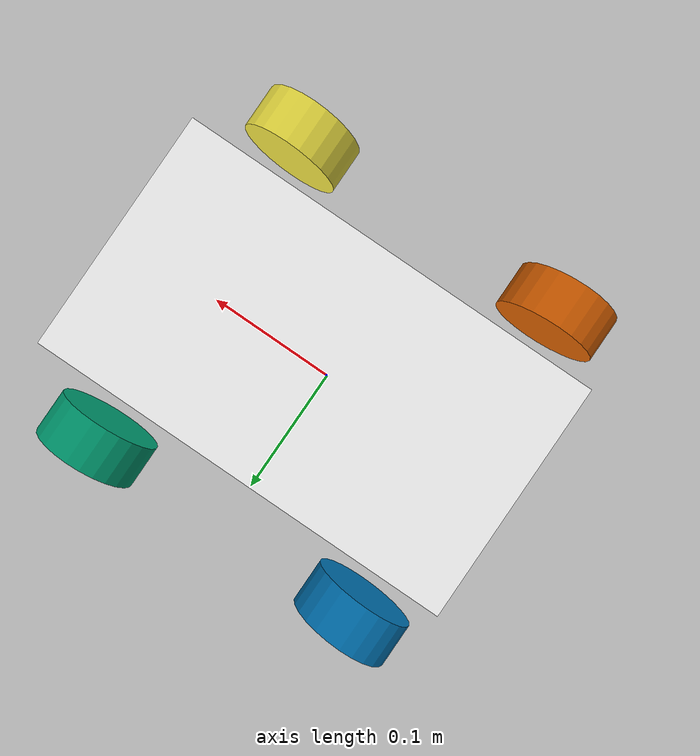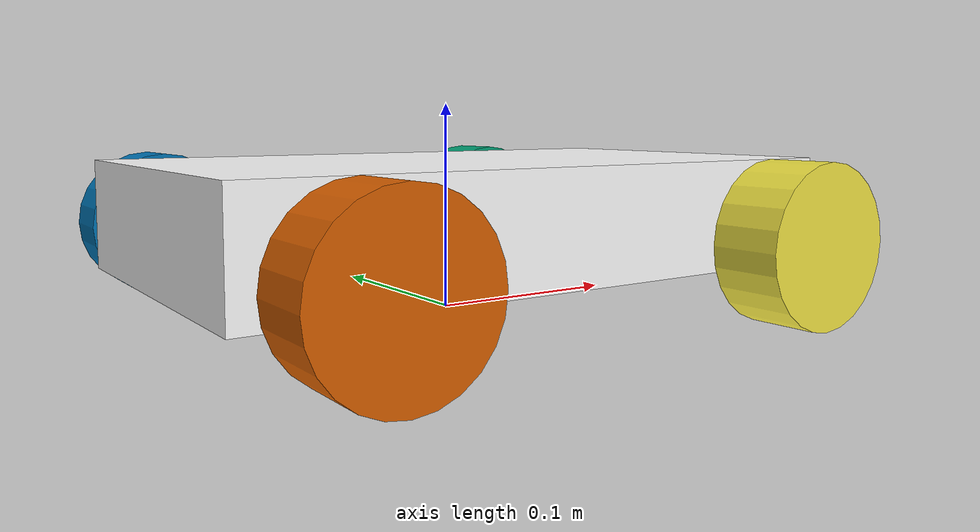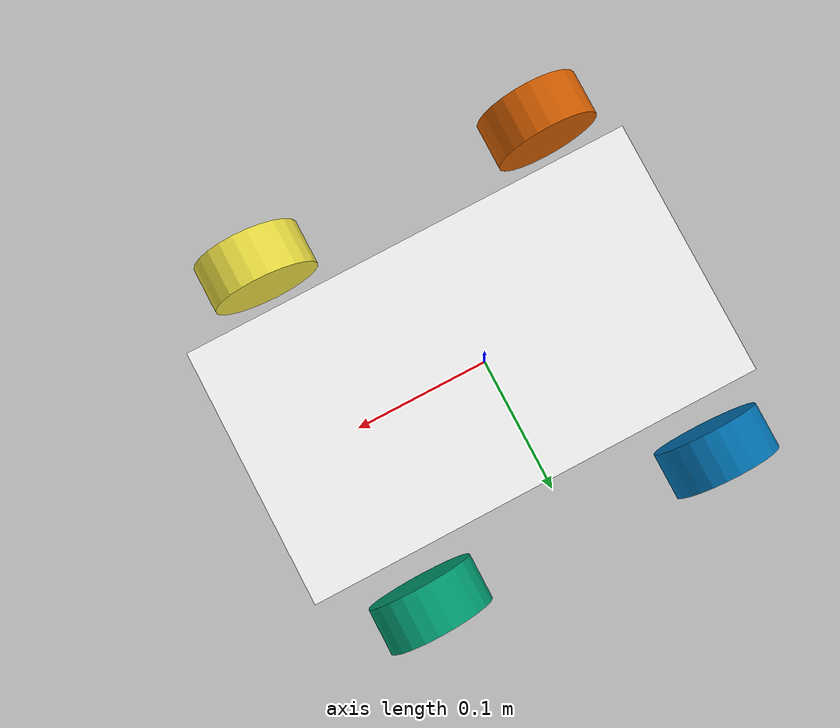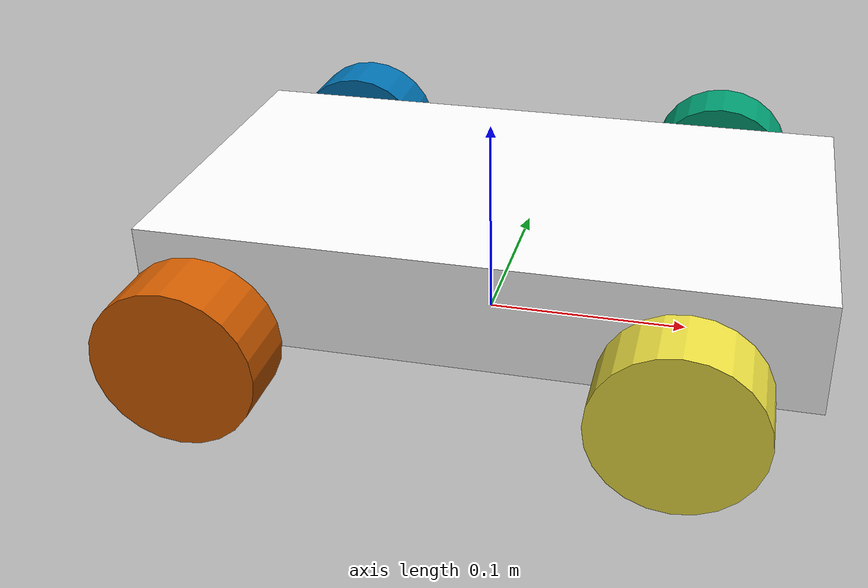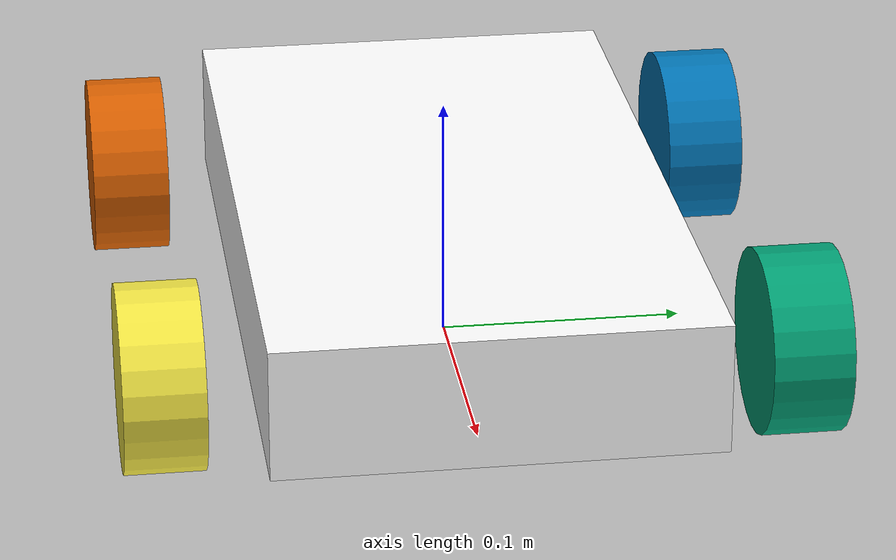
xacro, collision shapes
<?xml version="1.0"?>
<robot name="robotcar" xmlns:xacro="http://wiki.ros.org/xacro">
  <xacro:include filename="$(find robot_description)/urdf/robotcar_base.xacro"/>
  <xacro:include filename="$(find robot_description)/urdf/robotcar_sensors.xacro"/>
  <xacro:include filename="$(find robot_description)/urdf/robotcar_transmissions.xacro"/>
  <xacro:include filename="$(find robot_description)/urdf/robotcar_gazebo.xacro"/>
  <xacro:include filename="$(find robot_description)/urdf/robotcar_sensor_plugins.xacro"/>
</robot>

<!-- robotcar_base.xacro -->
<robot xmlns:xacro="http://wiki.ros.org/xacro">
  <!-- Geometry recovered from the official base_link.STL. -->
  <xacro:property name="cad_wheel_center_z" value="0.035791123"/>
  <xacro:property name="base_link_height" value="0.037230282"/>
  <xacro:property name="wheel_x" value="0.106000002"/>
  <xacro:property name="wheel_y" value="0.125000000"/>
  <xacro:property name="wheel_radius" value="0.037230282"/>
  <xacro:property name="wheel_width" value="0.032000005"/>

  <!-- v0.5 baseline. Total empty mass is updated from the official hardware parameter sheet (5.2 kg). -->
  <xacro:property name="wheel_mass" value="0.160421599492"/>
  <xacro:property name="wheel_damping" value="0.01"/>
  <!-- Simulation safety limits; must be checked against the real drive hardware later. -->
  <xacro:property name="wheel_max_velocity" value="16.115913385"/>
  <xacro:property name="wheel_max_effort" value="1.0"/>

  <link name="base_footprint"/>

  <link name="base_link">
    <visual>
      <!-- Keep official CAD appearance. The CAD wheel-centre plane is aligned with base_link. -->
      <origin xyz="0 0 -${cad_wheel_center_z}" rpy="0 0 0"/>
      <geometry>
        <mesh filename="package://robot_description/meshes/base_link.STL"/>
      </geometry>
      <material name="official_mesh">
        <color rgba="1 1 1 1"/>
      </material>
    </visual>

    <!-- Simplified lower-chassis collision recovered from the CAD lower-body envelope. -->
    <collision name="base_lower_collision">
      <origin xyz="0.009499997 0.000000000 0.009300001" rpy="0 0 0"/>
      <geometry>
        <box size="0.310999990 0.175999999 0.052999999"/>
      </geometry>
    </collision>

    <!-- Official lumped mass is redistributed into base + 4 wheels while preserving total mass. -->
    <inertial>
      <origin xyz="-0.081965593727 0.008421364598 0.103109011698" rpy="0 0 0"/>
      <mass value="4.558313602032"/>
      <inertia ixx="0.004667882197"
               ixy="-0.000385595025"
               ixz="-0.003250932891"
               iyy="0.031488485020"
               iyz="0.000491303319"
               izz="0.031491967442"/>
    </inertial>
  </link>

  <joint name="base_footprint_joint" type="fixed">
    <parent link="base_footprint"/>
    <child link="base_link"/>
    <!-- Actual wheel/ground contact plane: wheel centre is one radius above base_footprint. -->
    <origin xyz="0 0 ${base_link_height}" rpy="0 0 0"/>
  </joint>

  <xacro:macro name="physical_wheel" params="name x y">
    <link name="${name}_wheel_link">
      <!-- No visual here: the official full-robot STL already contains the wheel appearance. -->
      <collision name="${name}_wheel_collision">
        <origin xyz="0 0 0" rpy="1.5707963267948966 0 0"/>
        <geometry>
          <cylinder radius="${wheel_radius}" length="${wheel_width}"/>
        </geometry>
      </collision>
      <inertial>
        <origin xyz="0 0 0" rpy="0 0 0"/>
        <mass value="${wheel_mass}"/>
        <!-- Scaled from the CAD-derived baseline to preserve the official 5.2 kg total mass. -->
        <inertia ixx="0.000069279169" ixy="0" ixz="0"
                 iyy="0.000111179698" iyz="0"
                 izz="0.000069279169"/>
      </inertial>
    </link>
    <joint name="${name}_wheel_joint" type="continuous">
      <parent link="base_link"/>
      <child link="${name}_wheel_link"/>
      <origin xyz="${x} ${y} 0" rpy="0 0 0"/>
      <axis xyz="0 1 0"/>
      <limit effort="${wheel_max_effort}" velocity="${wheel_max_velocity}"/>
      <dynamics damping="${wheel_damping}" friction="0.0"/>
    </joint>
  </xacro:macro>

  <xacro:physical_wheel name="front_left"  x="${ wheel_x}" y="${ wheel_y}"/>
  <xacro:physical_wheel name="front_right" x="${ wheel_x}" y="${-wheel_y}"/>
  <xacro:physical_wheel name="rear_left"   x="${-wheel_x}" y="${ wheel_y}"/>
  <xacro:physical_wheel name="rear_right"  x="${-wheel_x}" y="${-wheel_y}"/>
</robot>

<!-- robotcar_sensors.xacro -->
<robot xmlns:xacro="http://wiki.ros.org/xacro">

  <xacro:property name="sensor_stl_front_x" value="0.16499999"/>
  <xacro:property name="sensor_stl_rear_x" value="-0.14600000"/>
  <xacro:property name="sensor_cad_wheel_center_z" value="0.035791123"/>

  <xacro:property name="lidar_x" value="0.09199999"/>
  <xacro:property name="lidar_y" value="0.0"/>
  <xacro:property name="lidar_z" value="0.122011877"/>

  <xacro:property name="camera_x" value="0.13499999"/>
  <xacro:property name="camera_y" value="0.0"/>
  <xacro:property name="camera_z" value="0.060287877"/>

  <xacro:property name="imu_x" value="-0.04300000"/>
  <xacro:property name="imu_y" value="0.0"/>
  <!-- Logical IMU frame at the shared LiDAR/IMU mounting plane. -->
  <xacro:property name="imu_z" value="0.107799877"/>

  <link name="laser_link"/>
  <joint name="laser_joint" type="fixed">
    <parent link="base_link"/>
    <child link="laser_link"/>
    <origin xyz="${lidar_x} ${lidar_y} ${lidar_z}" rpy="0 0 0"/>
  </joint>

  <link name="camera_link"/>
  <joint name="camera_joint" type="fixed">
    <parent link="base_link"/>
    <child link="camera_link"/>
    <origin xyz="${camera_x} ${camera_y} ${camera_z}" rpy="0 -0.0872665 0"/>
  </joint>

  <!-- REP-103 / ROS optical convention: +Z forward, +X right, +Y down. -->
  <link name="camera_optical_frame"/>
  <joint name="camera_optical_joint" type="fixed">
    <parent link="camera_link"/>
    <child link="camera_optical_frame"/>
    <origin xyz="0 0 0" rpy="-1.5707963267948966 0 -1.5707963267948966"/>
  </joint>

  <link name="imu_link"/>
  <joint name="imu_joint" type="fixed">
    <parent link="base_link"/>
    <child link="imu_link"/>
    <!--
      Position is measured/derived, but the real IMU board-axis rotation is
      still unknown. For simulation the logical imu_link is aligned to base_link.
    -->
    <origin xyz="${imu_x} ${imu_y} ${imu_z}" rpy="0 0 0"/>
  </joint>
</robot>

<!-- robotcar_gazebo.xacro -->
<robot xmlns:xacro="http://wiki.ros.org/xacro">
  <xacro:property name="mecanum_mu_high" value="1.0"/>
  <xacro:property name="mecanum_mu_low" value="0.05"/>
  <xacro:property name="contact_kp" value="1000000.0"/>
  <xacro:property name="contact_kd" value="10.0"/>
  <xacro:property name="diag" value="0.7071067811865476"/>

  <xacro:macro name="mecanum_contact" params="name fdir_z">
    <gazebo reference="${name}_wheel_link">
      <mu1>${mecanum_mu_high}</mu1>
      <mu2>${mecanum_mu_low}</mu2>
      <fdir1>${diag} 0 ${fdir_z}</fdir1>
      <kp>${contact_kp}</kp>
      <kd>${contact_kd}</kd>
      <minDepth>0.001</minDepth>
      <maxVel>0.1</maxVel>
      <selfCollide>false</selfCollide>
    </gazebo>
  </xacro:macro>

  <gazebo reference="base_link">
    <selfCollide>false</selfCollide>
  </gazebo>

  <!-- Keep sensor child links as distinct Gazebo bodies/frames for later sensor plugins. -->
  <gazebo reference="laser_joint"><preserveFixedJoint>true</preserveFixedJoint></gazebo>
  <gazebo reference="camera_joint"><preserveFixedJoint>true</preserveFixedJoint></gazebo>
  <gazebo reference="imu_joint"><preserveFixedJoint>true</preserveFixedJoint></gazebo>

  <!-- X-layout: FL/RR one handedness, FR/RL the opposite. -->
  <xacro:mecanum_contact name="front_left"  fdir_z="${diag}"/>
  <xacro:mecanum_contact name="front_right" fdir_z="${-diag}"/>
  <xacro:mecanum_contact name="rear_left"   fdir_z="${-diag}"/>
  <xacro:mecanum_contact name="rear_right"  fdir_z="${diag}"/>

  <gazebo>
    <plugin name="gazebo_ros_control" filename="libgazebo_ros_control.so">
      <robotNamespace>/</robotNamespace>
    </plugin>
  </gazebo>
</robot>
